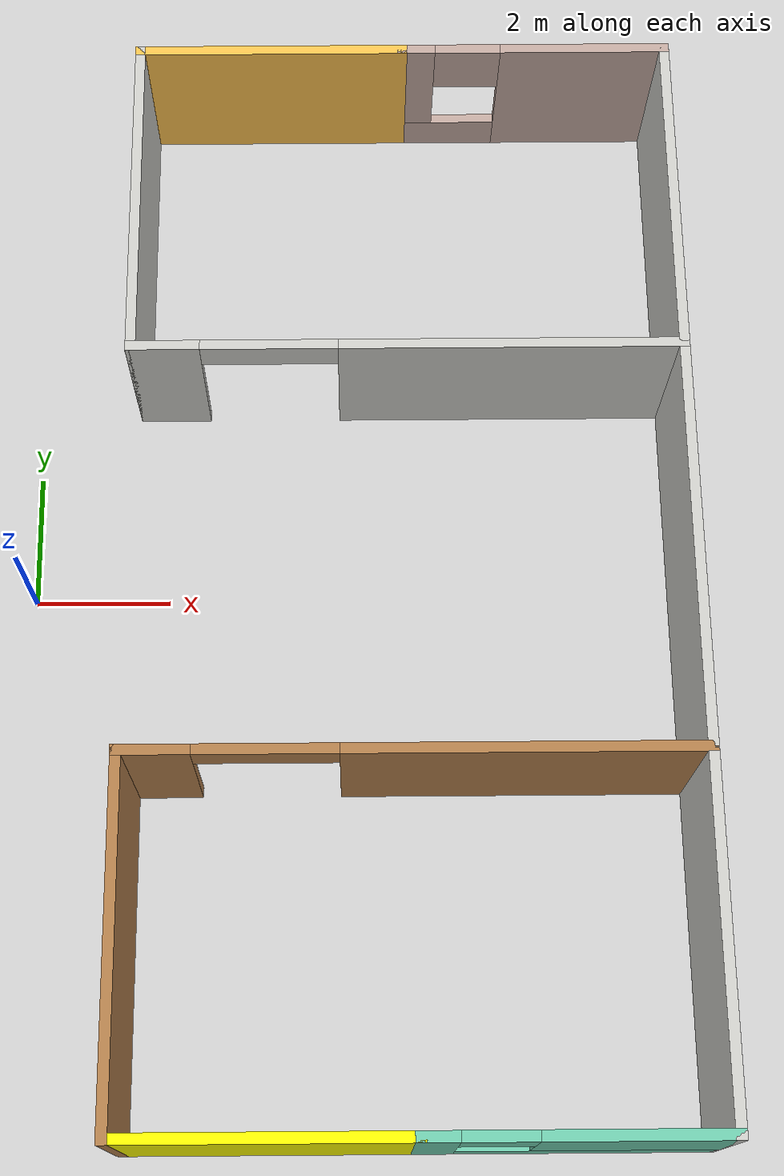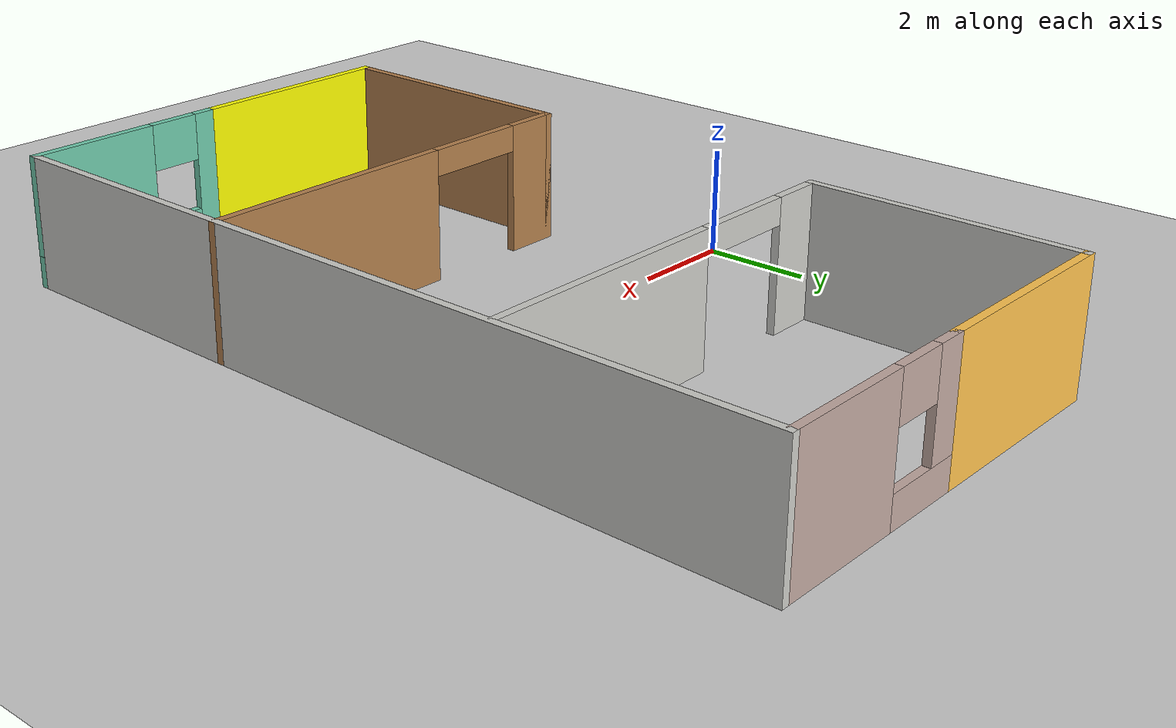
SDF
<sdf version="1.6">
 <world name="default">
  <model name="ground_plane">
   <static>1</static>
   <link name="link">
    <collision name="collision">
     <geometry><plane><normal>0 0 1</normal><size>100 100</size></plane></geometry>
     <surface>
      <contact><collide_bitmask>65535</collide_bitmask></contact>
      <friction><ode><mu>100</mu><mu2>50</mu2></ode></friction>
     </surface>
    </collision>
    <visual name="visual">
     <cast_shadows>0</cast_shadows>
     <geometry><plane><normal>0 0 1</normal><size>100 100</size></plane></geometry>
     <material>
      <script><uri>file://media/materials/scripts/gazebo.material</uri><name>Gazebo/Grey</name></script>
     </material>
    </visual>
   </link>
  </model>
  <model name="Project_building">
   <link name="Wall_16">
    <pose>4 -8 0 0 -0 0</pose>
    <visual name="Wall_16_Visual">
     <pose>0 0 1.25 0 -0 0</pose>
     <geometry><box><size>4.15 0.15 2.5</size></box></geometry>
     <material>
      <script><uri>file://media/materials/scripts/gazebo.material</uri><name>Gazebo/Grey</name></script>
      <ambient>1 1 0 1</ambient>
      <shader type="pixel"/>
      <diffuse>0.7 0.7 0.7 1</diffuse>
      <specular>0.01 0.01 0.01 1</specular>
      <emissive>0 0 0 1</emissive>
     </material>
     <meta><layer>0</layer></meta>
    </visual>
    <collision name="Wall_16_Collision">
     <pose>0 0 1.25 0 -0 0</pose>
     <geometry><box><size>4.15 0.15 2.5</size></box></geometry>
     <surface>
      <friction>
       <ode><mu>1</mu><mu2>1</mu2><fdir1>0 0 0</fdir1><slip1>0</slip1><slip2>0</slip2></ode>
       <torsional>
        <coefficient>1</coefficient>
        <patch_radius>0</patch_radius>
        <surface_radius>0</surface_radius>
        <use_patch_radius>1</use_patch_radius>
        <ode><slip>0</slip></ode>
       </torsional>
      </friction>
      <bounce><restitution_coefficient>0</restitution_coefficient><threshold>1e+06</threshold></bounce>
      <contact>
       <collide_without_contact>0</collide_without_contact>
       <collide_without_contact_bitmask>1</collide_without_contact_bitmask>
       <collide_bitmask>1</collide_bitmask>
       <ode>
        <soft_cfm>0</soft_cfm>
        <soft_erp>0.2</soft_erp>
        <kp>1e+13</kp>
        <kd>1</kd>
        <max_vel>0.01</max_vel>
        <min_depth>0</min_depth>
       </ode>
       <bullet>
        <split_impulse>1</split_impulse>
        <split_impulse_penetration_threshold>-0.01</split_impulse_penetration_threshold>
        <soft_cfm>0</soft_cfm>
        <soft_erp>0.2</soft_erp>
        <kp>1e+13</kp>
        <kd>1</kd>
       </bullet>
      </contact>
     </surface>
    </collision>
   </link>
   <link name="Wall_18">
    <pose>8 -8 0 0 -0 0</pose>
    <visual name="Wall_18_Visual_0">
     <pose>-1.7875 0 1.25 0 -0 0</pose>
     <geometry><box><size>0.575 0.15 2.5</size></box></geometry>
     <material>
      <script><uri>file://media/materials/scripts/gazebo.material</uri><name>Gazebo/Grey</name></script>
      <ambient>0.435294 0.796078 0.67451 1</ambient>
      <shader type="pixel"/>
      <diffuse>0.7 0.7 0.7 1</diffuse>
      <specular>0.01 0.01 0.01 1</specular>
      <emissive>0 0 0 1</emissive>
     </material>
     <meta><layer>0</layer></meta>
    </visual>
    <visual name="Wall_18_Visual_1">
     <pose>0.2875 0 0.3 0 -0 0</pose>
     <geometry><box><size>3.575 0.15 0.6</size></box></geometry>
     <material>
      <script><uri>file://media/materials/scripts/gazebo.material</uri><name>Gazebo/Grey</name></script>
      <ambient>0.435294 0.796078 0.67451 1</ambient>
      <shader type="pixel"/>
      <diffuse>0.7 0.7 0.7 1</diffuse>
      <specular>0.01 0.01 0.01 1</specular>
      <emissive>0 0 0 1</emissive>
     </material>
     <meta><layer>0</layer></meta>
    </visual>
    <visual name="Wall_18_Visual_2">
     <pose>0.7875 0 1.55 0 -0 0</pose>
     <geometry><box><size>2.575 0.15 1.9</size></box></geometry>
     <material>
      <script><uri>file://media/materials/scripts/gazebo.material</uri><name>Gazebo/Grey</name></script>
      <ambient>0.435294 0.796078 0.67451 1</ambient>
      <shader type="pixel"/>
      <diffuse>0.7 0.7 0.7 1</diffuse>
      <specular>0.01 0.01 0.01 1</specular>
      <emissive>0 0 0 1</emissive>
     </material>
     <meta><layer>0</layer></meta>
    </visual>
    <visual name="Wall_18_Visual_3">
     <pose>-1 0 2.05 0 -0 0</pose>
     <geometry><box><size>1 0.15 0.9</size></box></geometry>
     <material>
      <script><uri>file://media/materials/scripts/gazebo.material</uri><name>Gazebo/Grey</name></script>
      <ambient>0.435294 0.796078 0.67451 1</ambient>
      <shader type="pixel"/>
      <diffuse>0.7 0.7 0.7 1</diffuse>
      <specular>0.01 0.01 0.01 1</specular>
      <emissive>0 0 0 1</emissive>
     </material>
     <meta><layer>0</layer></meta>
    </visual>
    <collision name="Wall_18_Collision_0">
     <pose>-1.7875 0 1.25 0 -0 0</pose>
     <geometry><box><size>0.575 0.15 2.5</size></box></geometry>
     <surface>
      <friction>
       <ode><mu>1</mu><mu2>1</mu2><fdir1>0 0 0</fdir1><slip1>0</slip1><slip2>0</slip2></ode>
       <torsional>
        <coefficient>1</coefficient>
        <patch_radius>0</patch_radius>
        <surface_radius>0</surface_radius>
        <use_patch_radius>1</use_patch_radius>
        <ode><slip>0</slip></ode>
       </torsional>
      </friction>
      <bounce><restitution_coefficient>0</restitution_coefficient><threshold>1e+06</threshold></bounce>
      <contact>
       <collide_without_contact>0</collide_without_contact>
       <collide_without_contact_bitmask>1</collide_without_contact_bitmask>
       <collide_bitmask>1</collide_bitmask>
       <ode>
        <soft_cfm>0</soft_cfm>
        <soft_erp>0.2</soft_erp>
        <kp>1e+13</kp>
        <kd>1</kd>
        <max_vel>0.01</max_vel>
        <min_depth>0</min_depth>
       </ode>
       <bullet>
        <split_impulse>1</split_impulse>
        <split_impulse_penetration_threshold>-0.01</split_impulse_penetration_threshold>
        <soft_cfm>0</soft_cfm>
        <soft_erp>0.2</soft_erp>
        <kp>1e+13</kp>
        <kd>1</kd>
       </bullet>
      </contact>
     </surface>
    </collision>
    <collision name="Wall_18_Collision_1">
     <pose>0.2875 0 0.3 0 -0 0</pose>
     <geometry><box><size>3.575 0.15 0.6</size></box></geometry>
     <surface>
      <friction>
       <ode><mu>1</mu><mu2>1</mu2><fdir1>0 0 0</fdir1><slip1>0</slip1><slip2>0</slip2></ode>
       <torsional>
        <coefficient>1</coefficient>
        <patch_radius>0</patch_radius>
        <surface_radius>0</surface_radius>
        <use_patch_radius>1</use_patch_radius>
        <ode><slip>0</slip></ode>
       </torsional>
      </friction>
      <bounce><restitution_coefficient>0</restitution_coefficient><threshold>1e+06</threshold></bounce>
      <contact>
       <collide_without_contact>0</collide_without_contact>
       <collide_without_contact_bitmask>1</collide_without_contact_bitmask>
       <collide_bitmask>1</collide_bitmask>
       <ode>
        <soft_cfm>0</soft_cfm>
        <soft_erp>0.2</soft_erp>
        <kp>1e+13</kp>
        <kd>1</kd>
        <max_vel>0.01</max_vel>
        <min_depth>0</min_depth>
       </ode>
       <bullet>
        <split_impulse>1</split_impulse>
        <split_impulse_penetration_threshold>-0.01</split_impulse_penetration_threshold>
        <soft_cfm>0</soft_cfm>
        <soft_erp>0.2</soft_erp>
        <kp>1e+13</kp>
        <kd>1</kd>
       </bullet>
      </contact>
     </surface>
    </collision>
    <collision name="Wall_18_Collision_2">
     <pose>0.7875 0 1.55 0 -0 0</pose>
     <geometry><box><size>2.575 0.15 1.9</size></box></geometry>
     <surface>
      <friction>
       <ode><mu>1</mu><mu2>1</mu2><fdir1>0 0 0</fdir1><slip1>0</slip1><slip2>0</slip2></ode>
       <torsional>
        <coefficient>1</coefficient>
        <patch_radius>0</patch_radius>
        <surface_radius>0</surface_radius>
        <use_patch_radius>1</use_patch_radius>
        <ode><slip>0</slip></ode>
       </torsional>
      </friction>
      <bounce><restitution_coefficient>0</restitution_coefficient><threshold>1e+06</threshold></bounce>
      <contact>
       <collide_without_contact>0</collide_without_contact>
       <collide_without_contact_bitmask>1</collide_without_contact_bitmask>
       <collide_bitmask>1</collide_bitmask>
       <ode>
        <soft_cfm>0</soft_cfm>
        <soft_erp>0.2</soft_erp>
        <kp>1e+13</kp>
        <kd>1</kd>
        <max_vel>0.01</max_vel>
        <min_depth>0</min_depth>
       </ode>
       <bullet>
        <split_impulse>1</split_impulse>
        <split_impulse_penetration_threshold>-0.01</split_impulse_penetration_threshold>
        <soft_cfm>0</soft_cfm>
        <soft_erp>0.2</soft_erp>
        <kp>1e+13</kp>
        <kd>1</kd>
       </bullet>
      </contact>
     </surface>
    </collision>
    <collision name="Wall_18_Collision_3">
     <pose>-1 0 2.05 0 -0 0</pose>
     <geometry><box><size>1 0.15 0.9</size></box></geometry>
     <surface>
      <friction>
       <ode><mu>1</mu><mu2>1</mu2><fdir1>0 0 0</fdir1><slip1>0</slip1><slip2>0</slip2></ode>
       <torsional>
        <coefficient>1</coefficient>
        <patch_radius>0</patch_radius>
        <surface_radius>0</surface_radius>
        <use_patch_radius>1</use_patch_radius>
        <ode><slip>0</slip></ode>
       </torsional>
      </friction>
      <bounce><restitution_coefficient>0</restitution_coefficient><threshold>1e+06</threshold></bounce>
      <contact>
       <collide_without_contact>0</collide_without_contact>
       <collide_without_contact_bitmask>1</collide_without_contact_bitmask>
       <collide_bitmask>1</collide_bitmask>
       <ode>
        <soft_cfm>0</soft_cfm>
        <soft_erp>0.2</soft_erp>
        <kp>1e+13</kp>
        <kd>1</kd>
        <max_vel>0.01</max_vel>
        <min_depth>0</min_depth>
       </ode>
       <bullet>
        <split_impulse>1</split_impulse>
        <split_impulse_penetration_threshold>-0.01</split_impulse_penetration_threshold>
        <soft_cfm>0</soft_cfm>
        <soft_erp>0.2</soft_erp>
        <kp>1e+13</kp>
        <kd>1</kd>
       </bullet>
      </contact>
     </surface>
    </collision>
   </link>
   <link name="Wall_20">
    <pose>10 0 0 0 0 -1.5708</pose>
    <visual name="Wall_20_Visual">
     <pose>0 0 1.25 0 -0 0</pose>
     <geometry><box><size>16.15 0.15 2.5</size></box></geometry>
     <material>
      <script><uri>file://media/materials/scripts/gazebo.material</uri><name>Gazebo/CeilingTiled</name></script>
      <ambient>1 0.333333 0 1</ambient>
      <shader type="pixel"/>
      <diffuse>1 1 1 1</diffuse>
      <specular>0 0 0 1</specular>
      <emissive>0 0 0 1</emissive>
     </material>
     <meta><layer>0</layer></meta>
    </visual>
    <collision name="Wall_20_Collision">
     <pose>0 0 1.25 0 -0 0</pose>
     <geometry><box><size>16.15 0.15 2.5</size></box></geometry>
     <surface>
      <friction>
       <ode><mu>1</mu><mu2>1</mu2><fdir1>0 0 0</fdir1><slip1>0</slip1><slip2>0</slip2></ode>
       <torsional>
        <coefficient>1</coefficient>
        <patch_radius>0</patch_radius>
        <surface_radius>0</surface_radius>
        <use_patch_radius>1</use_patch_radius>
        <ode><slip>0</slip></ode>
       </torsional>
      </friction>
      <bounce><restitution_coefficient>0</restitution_coefficient><threshold>1e+06</threshold></bounce>
      <contact>
       <collide_without_contact>0</collide_without_contact>
       <collide_without_contact_bitmask>1</collide_without_contact_bitmask>
       <collide_bitmask>1</collide_bitmask>
       <ode>
        <soft_cfm>0</soft_cfm>
        <soft_erp>0.2</soft_erp>
        <kp>1e+13</kp>
        <kd>1</kd>
        <max_vel>0.01</max_vel>
        <min_depth>0</min_depth>
       </ode>
       <bullet>
        <split_impulse>1</split_impulse>
        <split_impulse_penetration_threshold>-0.01</split_impulse_penetration_threshold>
        <soft_cfm>0</soft_cfm>
        <soft_erp>0.2</soft_erp>
        <kp>1e+13</kp>
        <kd>1</kd>
       </bullet>
      </contact>
     </surface>
    </collision>
   </link>
   <link name="Wall_34">
    <pose>2 5.5 0 0 -0 1.5708</pose>
    <visual name="Wall_34_Visual">
     <pose>0 0 1.25 0 -0 0</pose>
     <geometry><box><size>5.15 0.15 2.5</size></box></geometry>
     <material>
      <script><uri>file://media/materials/scripts/gazebo.material</uri><name>Gazebo/CeilingTiled</name></script>
      <ambient>0.666667 0 1 1</ambient>
      <shader type="pixel"/>
      <diffuse>1 1 1 1</diffuse>
      <specular>0 0 0 1</specular>
      <emissive>0 0 0 1</emissive>
     </material>
     <meta><layer>0</layer></meta>
    </visual>
    <collision name="Wall_34_Collision">
     <pose>0 0 1.25 0 -0 0</pose>
     <geometry><box><size>5.15 0.15 2.5</size></box></geometry>
     <surface>
      <friction>
       <ode><mu>1</mu><mu2>1</mu2><fdir1>0 0 0</fdir1><slip1>0</slip1><slip2>0</slip2></ode>
       <torsional>
        <coefficient>1</coefficient>
        <patch_radius>0</patch_radius>
        <surface_radius>0</surface_radius>
        <use_patch_radius>1</use_patch_radius>
        <ode><slip>0</slip></ode>
       </torsional>
      </friction>
      <bounce><restitution_coefficient>0</restitution_coefficient><threshold>1e+06</threshold></bounce>
      <contact>
       <collide_without_contact>0</collide_without_contact>
       <collide_without_contact_bitmask>1</collide_without_contact_bitmask>
       <collide_bitmask>1</collide_bitmask>
       <ode>
        <soft_cfm>0</soft_cfm>
        <soft_erp>0.2</soft_erp>
        <kp>1e+13</kp>
        <kd>1</kd>
        <max_vel>0.01</max_vel>
        <min_depth>0</min_depth>
       </ode>
       <bullet>
        <split_impulse>1</split_impulse>
        <split_impulse_penetration_threshold>-0.01</split_impulse_penetration_threshold>
        <soft_cfm>0</soft_cfm>
        <soft_erp>0.2</soft_erp>
        <kp>1e+13</kp>
        <kd>1</kd>
       </bullet>
      </contact>
     </surface>
    </collision>
   </link>
   <link name="Wall_36">
    <pose>2 -5.5 0 0 0 -1.5708</pose>
    <visual name="Wall_36_Visual">
     <pose>0 0 1.25 0 -0 0</pose>
     <geometry><box><size>5.15 0.15 2.5</size></box></geometry>
     <material>
      <script><uri>file://media/materials/scripts/gazebo.material</uri><name>Gazebo/Wood</name></script>
      <ambient>0.435294 0.796078 0.67451 1</ambient>
      <shader type="pixel"/>
      <diffuse>1 1 1 1</diffuse>
      <specular>0.2 0.2 0.2 1</specular>
      <emissive>0 0 0 1</emissive>
     </material>
     <meta><layer>0</layer></meta>
    </visual>
    <collision name="Wall_36_Collision">
     <pose>0 0 1.25 0 -0 0</pose>
     <geometry><box><size>5.15 0.15 2.5</size></box></geometry>
     <surface>
      <friction>
       <ode><mu>1</mu><mu2>1</mu2><fdir1>0 0 0</fdir1><slip1>0</slip1><slip2>0</slip2></ode>
       <torsional>
        <coefficient>1</coefficient>
        <patch_radius>0</patch_radius>
        <surface_radius>0</surface_radius>
        <use_patch_radius>1</use_patch_radius>
        <ode><slip>0</slip></ode>
       </torsional>
      </friction>
      <bounce><restitution_coefficient>0</restitution_coefficient><threshold>1e+06</threshold></bounce>
      <contact>
       <collide_without_contact>0</collide_without_contact>
       <collide_without_contact_bitmask>1</collide_without_contact_bitmask>
       <collide_bitmask>1</collide_bitmask>
       <ode>
        <soft_cfm>0</soft_cfm>
        <soft_erp>0.2</soft_erp>
        <kp>1e+13</kp>
        <kd>1</kd>
        <max_vel>0.01</max_vel>
        <min_depth>0</min_depth>
       </ode>
       <bullet>
        <split_impulse>1</split_impulse>
        <split_impulse_penetration_threshold>-0.01</split_impulse_penetration_threshold>
        <soft_cfm>0</soft_cfm>
        <soft_erp>0.2</soft_erp>
        <kp>1e+13</kp>
        <kd>1</kd>
       </bullet>
      </contact>
     </surface>
    </collision>
   </link>
   <link name="Wall_40">
    <pose>6 -3 0 0 -0 0</pose>
    <visual name="Wall_40_Visual_0">
     <pose>-3.5375 0 1.25 0 -0 0</pose>
     <geometry><box><size>1.075 0.15 2.5</size></box></geometry>
     <material>
      <script><uri>file://media/materials/scripts/gazebo.material</uri><name>Gazebo/Wood</name></script>
      <ambient>0.996078 0.47451 0.0196078 1</ambient>
      <shader type="pixel"/>
      <diffuse>1 1 1 1</diffuse>
      <specular>0.2 0.2 0.2 1</specular>
      <emissive>0 0 0 1</emissive>
     </material>
     <meta><layer>0</layer></meta>
    </visual>
    <visual name="Wall_40_Visual_1">
     <pose>1.5375 0 1.25 0 -0 0</pose>
     <geometry><box><size>5.075 0.15 2.5</size></box></geometry>
     <material>
      <script><uri>file://media/materials/scripts/gazebo.material</uri><name>Gazebo/Wood</name></script>
      <ambient>0.996078 0.47451 0.0196078 1</ambient>
      <shader type="pixel"/>
      <diffuse>1 1 1 1</diffuse>
      <specular>0.2 0.2 0.2 1</specular>
      <emissive>0 0 0 1</emissive>
     </material>
     <meta><layer>0</layer></meta>
    </visual>
    <visual name="Wall_40_Visual_2">
     <pose>-2 0 2.25 0 -0 0</pose>
     <geometry><box><size>2 0.15 0.5</size></box></geometry>
     <material>
      <script><uri>file://media/materials/scripts/gazebo.material</uri><name>Gazebo/Wood</name></script>
      <ambient>0.996078 0.47451 0.0196078 1</ambient>
      <shader type="pixel"/>
      <diffuse>1 1 1 1</diffuse>
      <specular>0.2 0.2 0.2 1</specular>
      <emissive>0 0 0 1</emissive>
     </material>
     <meta><layer>0</layer></meta>
    </visual>
    <collision name="Wall_40_Collision_0">
     <pose>-3.5375 0 1.25 0 -0 0</pose>
     <geometry><box><size>1.075 0.15 2.5</size></box></geometry>
     <surface>
      <friction>
       <ode><mu>1</mu><mu2>1</mu2><fdir1>0 0 0</fdir1><slip1>0</slip1><slip2>0</slip2></ode>
       <torsional>
        <coefficient>1</coefficient>
        <patch_radius>0</patch_radius>
        <surface_radius>0</surface_radius>
        <use_patch_radius>1</use_patch_radius>
        <ode><slip>0</slip></ode>
       </torsional>
      </friction>
      <bounce><restitution_coefficient>0</restitution_coefficient><threshold>1e+06</threshold></bounce>
      <contact>
       <collide_without_contact>0</collide_without_contact>
       <collide_without_contact_bitmask>1</collide_without_contact_bitmask>
       <collide_bitmask>1</collide_bitmask>
       <ode>
        <soft_cfm>0</soft_cfm>
        <soft_erp>0.2</soft_erp>
        <kp>1e+13</kp>
        <kd>1</kd>
        <max_vel>0.01</max_vel>
        <min_depth>0</min_depth>
       </ode>
       <bullet>
        <split_impulse>1</split_impulse>
        <split_impulse_penetration_threshold>-0.01</split_impulse_penetration_threshold>
        <soft_cfm>0</soft_cfm>
        <soft_erp>0.2</soft_erp>
        <kp>1e+13</kp>
        <kd>1</kd>
       </bullet>
      </contact>
     </surface>
    </collision>
    <collision name="Wall_40_Collision_1">
     <pose>1.5375 0 1.25 0 -0 0</pose>
     <geometry><box><size>5.075 0.15 2.5</size></box></geometry>
     <surface>
      <friction>
       <ode><mu>1</mu><mu2>1</mu2><fdir1>0 0 0</fdir1><slip1>0</slip1><slip2>0</slip2></ode>
       <torsional>
        <coefficient>1</coefficient>
        <patch_radius>0</patch_radius>
        <surface_radius>0</surface_radius>
        <use_patch_radius>1</use_patch_radius>
        <ode><slip>0</slip></ode>
       </torsional>
      </friction>
      <bounce><restitution_coefficient>0</restitution_coefficient><threshold>1e+06</threshold></bounce>
      <contact>
       <collide_without_contact>0</collide_without_contact>
       <collide_without_contact_bitmask>1</collide_without_contact_bitmask>
       <collide_bitmask>1</collide_bitmask>
       <ode>
        <soft_cfm>0</soft_cfm>
        <soft_erp>0.2</soft_erp>
        <kp>1e+13</kp>
        <kd>1</kd>
        <max_vel>0.01</max_vel>
        <min_depth>0</min_depth>
       </ode>
       <bullet>
        <split_impulse>1</split_impulse>
        <split_impulse_penetration_threshold>-0.01</split_impulse_penetration_threshold>
        <soft_cfm>0</soft_cfm>
        <soft_erp>0.2</soft_erp>
        <kp>1e+13</kp>
        <kd>1</kd>
       </bullet>
      </contact>
     </surface>
    </collision>
    <collision name="Wall_40_Collision_2">
     <pose>-2 0 2.25 0 -0 0</pose>
     <geometry><box><size>2 0.15 0.5</size></box></geometry>
     <surface>
      <friction>
       <ode><mu>1</mu><mu2>1</mu2><fdir1>0 0 0</fdir1><slip1>0</slip1><slip2>0</slip2></ode>
       <torsional>
        <coefficient>1</coefficient>
        <patch_radius>0</patch_radius>
        <surface_radius>0</surface_radius>
        <use_patch_radius>1</use_patch_radius>
        <ode><slip>0</slip></ode>
       </torsional>
      </friction>
      <bounce><restitution_coefficient>0</restitution_coefficient><threshold>1e+06</threshold></bounce>
      <contact>
       <collide_without_contact>0</collide_without_contact>
       <collide_without_contact_bitmask>1</collide_without_contact_bitmask>
       <collide_bitmask>1</collide_bitmask>
       <ode>
        <soft_cfm>0</soft_cfm>
        <soft_erp>0.2</soft_erp>
        <kp>1e+13</kp>
        <kd>1</kd>
        <max_vel>0.01</max_vel>
        <min_depth>0</min_depth>
       </ode>
       <bullet>
        <split_impulse>1</split_impulse>
        <split_impulse_penetration_threshold>-0.01</split_impulse_penetration_threshold>
        <soft_cfm>0</soft_cfm>
        <soft_erp>0.2</soft_erp>
        <kp>1e+13</kp>
        <kd>1</kd>
       </bullet>
      </contact>
     </surface>
    </collision>
   </link>
   <link name="Wall_42">
    <pose>6 3 0 0 -0 0</pose>
    <visual name="Wall_42_Visual_0">
     <pose>-3.5375 0 1.25 0 -0 0</pose>
     <geometry><box><size>1.075 0.15 2.5</size></box></geometry>
     <material>
      <script><uri>file://media/materials/scripts/gazebo.material</uri><name>Gazebo/CeilingTiled</name></script>
      <ambient>0.435294 0.796078 0.67451 1</ambient>
      <shader type="pixel"/>
      <diffuse>1 1 1 1</diffuse>
      <specular>0 0 0 1</specular>
      <emissive>0 0 0 1</emissive>
     </material>
     <meta><layer>0</layer></meta>
    </visual>
    <visual name="Wall_42_Visual_1">
     <pose>1.5375 0 1.25 0 -0 0</pose>
     <geometry><box><size>5.075 0.15 2.5</size></box></geometry>
     <material>
      <script><uri>file://media/materials/scripts/gazebo.material</uri><name>Gazebo/CeilingTiled</name></script>
      <ambient>0.435294 0.796078 0.67451 1</ambient>
      <shader type="pixel"/>
      <diffuse>1 1 1 1</diffuse>
      <specular>0 0 0 1</specular>
      <emissive>0 0 0 1</emissive>
     </material>
     <meta><layer>0</layer></meta>
    </visual>
    <visual name="Wall_42_Visual_2">
     <pose>-2 0 2.25 0 -0 0</pose>
     <geometry><box><size>2 0.15 0.5</size></box></geometry>
     <material>
      <script><uri>file://media/materials/scripts/gazebo.material</uri><name>Gazebo/CeilingTiled</name></script>
      <ambient>0.435294 0.796078 0.67451 1</ambient>
      <shader type="pixel"/>
      <diffuse>1 1 1 1</diffuse>
      <specular>0 0 0 1</specular>
      <emissive>0 0 0 1</emissive>
     </material>
     <meta><layer>0</layer></meta>
    </visual>
    <collision name="Wall_42_Collision_0">
     <pose>-3.5375 0 1.25 0 -0 0</pose>
     <geometry><box><size>1.075 0.15 2.5</size></box></geometry>
     <surface>
      <friction>
       <ode><mu>1</mu><mu2>1</mu2><fdir1>0 0 0</fdir1><slip1>0</slip1><slip2>0</slip2></ode>
       <torsional>
        <coefficient>1</coefficient>
        <patch_radius>0</patch_radius>
        <surface_radius>0</surface_radius>
        <use_patch_radius>1</use_patch_radius>
        <ode><slip>0</slip></ode>
       </torsional>
      </friction>
      <bounce><restitution_coefficient>0</restitution_coefficient><threshold>1e+06</threshold></bounce>
      <contact>
       <collide_without_contact>0</collide_without_contact>
       <collide_without_contact_bitmask>1</collide_without_contact_bitmask>
       <collide_bitmask>1</collide_bitmask>
       <ode>
        <soft_cfm>0</soft_cfm>
        <soft_erp>0.2</soft_erp>
        <kp>1e+13</kp>
        <kd>1</kd>
        <max_vel>0.01</max_vel>
        <min_depth>0</min_depth>
       </ode>
       <bullet>
        <split_impulse>1</split_impulse>
        <split_impulse_penetration_threshold>-0.01</split_impulse_penetration_threshold>
        <soft_cfm>0</soft_cfm>
        <soft_erp>0.2</soft_erp>
        <kp>1e+13</kp>
        <kd>1</kd>
       </bullet>
      </contact>
     </surface>
    </collision>
    <collision name="Wall_42_Collision_1">
     <pose>1.5375 0 1.25 0 -0 0</pose>
     <geometry><box><size>5.075 0.15 2.5</size></box></geometry>
     <surface>
      <friction>
       <ode><mu>1</mu><mu2>1</mu2><fdir1>0 0 0</fdir1><slip1>0</slip1><slip2>0</slip2></ode>
       <torsional>
        <coefficient>1</coefficient>
        <patch_radius>0</patch_radius>
        <surface_radius>0</surface_radius>
        <use_patch_radius>1</use_patch_radius>
        <ode><slip>0</slip></ode>
       </torsional>
      </friction>
      <bounce><restitution_coefficient>0</restitution_coefficient><threshold>1e+06</threshold></bounce>
      <contact>
       <collide_without_contact>0</collide_without_contact>
       <collide_without_contact_bitmask>1</collide_without_contact_bitmask>
       <collide_bitmask>1</collide_bitmask>
       <ode>
        <soft_cfm>0</soft_cfm>
        <soft_erp>0.2</soft_erp>
        <kp>1e+13</kp>
        <kd>1</kd>
        <max_vel>0.01</max_vel>
        <min_depth>0</min_depth>
       </ode>
       <bullet>
        <split_impulse>1</split_impulse>
        <split_impulse_penetration_threshold>-0.01</split_impulse_penetration_threshold>
        <soft_cfm>0</soft_cfm>
        <soft_erp>0.2</soft_erp>
        <kp>1e+13</kp>
        <kd>1</kd>
       </bullet>
      </contact>
     </surface>
    </collision>
    <collision name="Wall_42_Collision_2">
     <pose>-2 0 2.25 0 -0 0</pose>
     <geometry><box><size>2 0.15 0.5</size></box></geometry>
     <surface>
      <friction>
       <ode><mu>1</mu><mu2>1</mu2><fdir1>0 0 0</fdir1><slip1>0</slip1><slip2>0</slip2></ode>
       <torsional>
        <coefficient>1</coefficient>
        <patch_radius>0</patch_radius>
        <surface_radius>0</surface_radius>
        <use_patch_radius>1</use_patch_radius>
        <ode><slip>0</slip></ode>
       </torsional>
      </friction>
      <bounce><restitution_coefficient>0</restitution_coefficient><threshold>1e+06</threshold></bounce>
      <contact>
       <collide_without_contact>0</collide_without_contact>
       <collide_without_contact_bitmask>1</collide_without_contact_bitmask>
       <collide_bitmask>1</collide_bitmask>
       <ode>
        <soft_cfm>0</soft_cfm>
        <soft_erp>0.2</soft_erp>
        <kp>1e+13</kp>
        <kd>1</kd>
        <max_vel>0.01</max_vel>
        <min_depth>0</min_depth>
       </ode>
       <bullet>
        <split_impulse>1</split_impulse>
        <split_impulse_penetration_threshold>-0.01</split_impulse_penetration_threshold>
        <soft_cfm>0</soft_cfm>
        <soft_erp>0.2</soft_erp>
        <kp>1e+13</kp>
        <kd>1</kd>
       </bullet>
      </contact>
     </surface>
    </collision>
   </link>
   <link name="Wall_6">
    <pose>4 8 0 0 -0 3.14159</pose>
    <visual name="Wall_6_Visual">
     <pose>0 0 1.25 0 -0 0</pose>
     <geometry><box><size>4.15 0.15 2.5</size></box></geometry>
     <material>
      <script><uri>file://media/materials/scripts/gazebo.material</uri><name>Gazebo/Grey</name></script>
      <ambient>1 0.764706 0.305882 1</ambient>
      <shader type="pixel"/>
      <diffuse>0.7 0.7 0.7 1</diffuse>
      <specular>0.01 0.01 0.01 1</specular>
      <emissive>0 0 0 1</emissive>
     </material>
     <meta><layer>0</layer></meta>
    </visual>
    <collision name="Wall_6_Collision">
     <pose>0 0 1.25 0 -0 0</pose>
     <geometry><box><size>4.15 0.15 2.5</size></box></geometry>
     <surface>
      <friction>
       <ode><mu>1</mu><mu2>1</mu2><fdir1>0 0 0</fdir1><slip1>0</slip1><slip2>0</slip2></ode>
       <torsional>
        <coefficient>1</coefficient>
        <patch_radius>0</patch_radius>
        <surface_radius>0</surface_radius>
        <use_patch_radius>1</use_patch_radius>
        <ode><slip>0</slip></ode>
       </torsional>
      </friction>
      <bounce><restitution_coefficient>0</restitution_coefficient><threshold>1e+06</threshold></bounce>
      <contact>
       <collide_without_contact>0</collide_without_contact>
       <collide_without_contact_bitmask>1</collide_without_contact_bitmask>
       <collide_bitmask>1</collide_bitmask>
       <ode>
        <soft_cfm>0</soft_cfm>
        <soft_erp>0.2</soft_erp>
        <kp>1e+13</kp>
        <kd>1</kd>
        <max_vel>0.01</max_vel>
        <min_depth>0</min_depth>
       </ode>
       <bullet>
        <split_impulse>1</split_impulse>
        <split_impulse_penetration_threshold>-0.01</split_impulse_penetration_threshold>
        <soft_cfm>0</soft_cfm>
        <soft_erp>0.2</soft_erp>
        <kp>1e+13</kp>
        <kd>1</kd>
       </bullet>
      </contact>
     </surface>
    </collision>
   </link>
   <link name="Wall_8">
    <pose>8 8 0 0 -0 3.14159</pose>
    <visual name="Wall_8_Visual_0">
     <pose>-0.7875 0 1.25 0 -0 0</pose>
     <geometry><box><size>2.575 0.15 2.5</size></box></geometry>
     <material>
      <script><uri>file://media/materials/scripts/gazebo.material</uri><name>Gazebo/Grey</name></script>
      <ambient>0.760784 0.662745 0.627451 1</ambient>
      <shader type="pixel"/>
      <diffuse>0.7 0.7 0.7 1</diffuse>
      <specular>0.01 0.01 0.01 1</specular>
      <emissive>0 0 0 1</emissive>
     </material>
     <meta><layer>0</layer></meta>
    </visual>
    <visual name="Wall_8_Visual_1">
     <pose>1.2875 0 0.3 0 -0 0</pose>
     <geometry><box><size>1.575 0.15 0.6</size></box></geometry>
     <material>
      <script><uri>file://media/materials/scripts/gazebo.material</uri><name>Gazebo/Grey</name></script>
      <ambient>0.760784 0.662745 0.627451 1</ambient>
      <shader type="pixel"/>
      <diffuse>0.7 0.7 0.7 1</diffuse>
      <specular>0.01 0.01 0.01 1</specular>
      <emissive>0 0 0 1</emissive>
     </material>
     <meta><layer>0</layer></meta>
    </visual>
    <visual name="Wall_8_Visual_2">
     <pose>1.7875 0 1.55 0 -0 0</pose>
     <geometry><box><size>0.575 0.15 1.9</size></box></geometry>
     <material>
      <script><uri>file://media/materials/scripts/gazebo.material</uri><name>Gazebo/Grey</name></script>
      <ambient>0.760784 0.662745 0.627451 1</ambient>
      <shader type="pixel"/>
      <diffuse>0.7 0.7 0.7 1</diffuse>
      <specular>0.01 0.01 0.01 1</specular>
      <emissive>0 0 0 1</emissive>
     </material>
     <meta><layer>0</layer></meta>
    </visual>
    <visual name="Wall_8_Visual_3">
     <pose>1 0 2.05 0 -0 0</pose>
     <geometry><box><size>1 0.15 0.9</size></box></geometry>
     <material>
      <script><uri>file://media/materials/scripts/gazebo.material</uri><name>Gazebo/Grey</name></script>
      <ambient>0.760784 0.662745 0.627451 1</ambient>
      <shader type="pixel"/>
      <diffuse>0.7 0.7 0.7 1</diffuse>
      <specular>0.01 0.01 0.01 1</specular>
      <emissive>0 0 0 1</emissive>
     </material>
     <meta><layer>0</layer></meta>
    </visual>
    <collision name="Wall_8_Collision_1">
     <pose>1.2875 0 0.3 0 -0 0</pose>
     <geometry><box><size>1.575 0.15 0.6</size></box></geometry>
     <surface>
      <friction>
       <ode><mu>1</mu><mu2>1</mu2><fdir1>0 0 0</fdir1><slip1>0</slip1><slip2>0</slip2></ode>
       <torsional>
        <coefficient>1</coefficient>
        <patch_radius>0</patch_radius>
        <surface_radius>0</surface_radius>
        <use_patch_radius>1</use_patch_radius>
        <ode><slip>0</slip></ode>
       </torsional>
      </friction>
      <bounce><restitution_coefficient>0</restitution_coefficient><threshold>1e+06</threshold></bounce>
      <contact>
       <collide_without_contact>0</collide_without_contact>
       <collide_without_contact_bitmask>1</collide_without_contact_bitmask>
       <collide_bitmask>1</collide_bitmask>
       <ode>
        <soft_cfm>0</soft_cfm>
        <soft_erp>0.2</soft_erp>
        <kp>1e+13</kp>
        <kd>1</kd>
        <max_vel>0.01</max_vel>
        <min_depth>0</min_depth>
       </ode>
       <bullet>
        <split_impulse>1</split_impulse>
        <split_impulse_penetration_threshold>-0.01</split_impulse_penetration_threshold>
        <soft_cfm>0</soft_cfm>
        <soft_erp>0.2</soft_erp>
        <kp>1e+13</kp>
        <kd>1</kd>
       </bullet>
      </contact>
     </surface>
    </collision>
    <collision name="Wall_8_Collision_0">
     <pose>-0.7875 0 1.25 0 -0 0</pose>
     <geometry><box><size>2.575 0.15 2.5</size></box></geometry>
     <surface>
      <friction>
       <ode><mu>1</mu><mu2>1</mu2><fdir1>0 0 0</fdir1><slip1>0</slip1><slip2>0</slip2></ode>
       <torsional>
        <coefficient>1</coefficient>
        <patch_radius>0</patch_radius>
        <surface_radius>0</surface_radius>
        <use_patch_radius>1</use_patch_radius>
        <ode><slip>0</slip></ode>
       </torsional>
      </friction>
      <bounce><restitution_coefficient>0</restitution_coefficient><threshold>1e+06</threshold></bounce>
      <contact>
       <collide_without_contact>0</collide_without_contact>
       <collide_without_contact_bitmask>1</collide_without_contact_bitmask>
       <collide_bitmask>1</collide_bitmask>
       <ode>
        <soft_cfm>0</soft_cfm>
        <soft_erp>0.2</soft_erp>
        <kp>1e+13</kp>
        <kd>1</kd>
        <max_vel>0.01</max_vel>
        <min_depth>0</min_depth>
       </ode>
       <bullet>
        <split_impulse>1</split_impulse>
        <split_impulse_penetration_threshold>-0.01</split_impulse_penetration_threshold>
        <soft_cfm>0</soft_cfm>
        <soft_erp>0.2</soft_erp>
        <kp>1e+13</kp>
        <kd>1</kd>
       </bullet>
      </contact>
     </surface>
    </collision>
    <collision name="Wall_8_Collision_2">
     <pose>1.7875 0 1.55 0 -0 0</pose>
     <geometry><box><size>0.575 0.15 1.9</size></box></geometry>
     <surface>
      <friction>
       <ode><mu>1</mu><mu2>1</mu2><fdir1>0 0 0</fdir1><slip1>0</slip1><slip2>0</slip2></ode>
       <torsional>
        <coefficient>1</coefficient>
        <patch_radius>0</patch_radius>
        <surface_radius>0</surface_radius>
        <use_patch_radius>1</use_patch_radius>
        <ode><slip>0</slip></ode>
       </torsional>
      </friction>
      <bounce><restitution_coefficient>0</restitution_coefficient><threshold>1e+06</threshold></bounce>
      <contact>
       <collide_without_contact>0</collide_without_contact>
       <collide_without_contact_bitmask>1</collide_without_contact_bitmask>
       <collide_bitmask>1</collide_bitmask>
       <ode>
        <soft_cfm>0</soft_cfm>
        <soft_erp>0.2</soft_erp>
        <kp>1e+13</kp>
        <kd>1</kd>
        <max_vel>0.01</max_vel>
        <min_depth>0</min_depth>
       </ode>
       <bullet>
        <split_impulse>1</split_impulse>
        <split_impulse_penetration_threshold>-0.01</split_impulse_penetration_threshold>
        <soft_cfm>0</soft_cfm>
        <soft_erp>0.2</soft_erp>
        <kp>1e+13</kp>
        <kd>1</kd>
       </bullet>
      </contact>
     </surface>
    </collision>
    <collision name="Wall_8_Collision_3">
     <pose>1 0 2.05 0 -0 0</pose>
     <geometry><box><size>1 0.15 0.9</size></box></geometry>
     <surface>
      <friction>
       <ode><mu>1</mu><mu2>1</mu2><fdir1>0 0 0</fdir1><slip1>0</slip1><slip2>0</slip2></ode>
       <torsional>
        <coefficient>1</coefficient>
        <patch_radius>0</patch_radius>
        <surface_radius>0</surface_radius>
        <use_patch_radius>1</use_patch_radius>
        <ode><slip>0</slip></ode>
       </torsional>
      </friction>
      <bounce><restitution_coefficient>0</restitution_coefficient><threshold>1e+06</threshold></bounce>
      <contact>
       <collide_without_contact>0</collide_without_contact>
       <collide_without_contact_bitmask>1</collide_without_contact_bitmask>
       <collide_bitmask>1</collide_bitmask>
       <ode>
        <soft_cfm>0</soft_cfm>
        <soft_erp>0.2</soft_erp>
        <kp>1e+13</kp>
        <kd>1</kd>
        <max_vel>0.01</max_vel>
        <min_depth>0</min_depth>
       </ode>
       <bullet>
        <split_impulse>1</split_impulse>
        <split_impulse_penetration_threshold>-0.01</split_impulse_penetration_threshold>
        <soft_cfm>0</soft_cfm>
        <soft_erp>0.2</soft_erp>
        <kp>1e+13</kp>
        <kd>1</kd>
       </bullet>
      </contact>
     </surface>
    </collision>
   </link>
   <static>1</static>
   <pose>-0.438517 0.078149 0 0 -0 0</pose>
  </model>
 </world>
</sdf>
